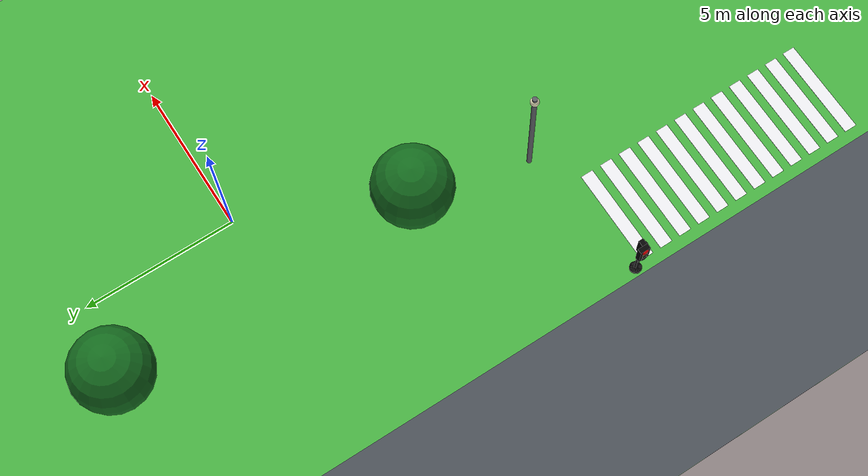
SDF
<sdf version="1.10">
 <world name="city_second">
  <model name="ground_plane">
   <static>true</static>
   <link name="link">
    <collision name="collision">
     <geometry><plane><normal>0 0 1</normal><size>300 300</size></plane></geometry>
    </collision>
    <visual name="visual">
     <geometry><plane><normal>0 0 1</normal><size>300 300</size></plane></geometry>
     <material>
      <ambient>0.280000001 0.689999998 0.25999999 1</ambient>
      <diffuse>0.280000001 0.689999998 0.25999999 1</diffuse>
      <specular>0.0299999993 0.0299999993 0.0299999993 1</specular>
     </material>
    </visual>
    <inertial>
     <mass>1</mass>
     <inertia><ixx>1</ixx><ixy>0</ixy><ixz>0</ixz><iyy>1</iyy><iyz>0</iyz><izz>1</izz></inertia>
    </inertial>
   </link>
  </model>
  <model name="road_v_2_1">
   <static>true</static>
   <pose>-12.095599999999999 -0.169792 0.01 0 0 0</pose>
   <link name="link">
    <collision name="collision"><geometry><box><size>8 84 0.02</size></box></geometry></collision>
    <visual name="visual">
     <geometry><box><size>8 84 0.02</size></box></geometry>
     <material>
      <ambient>0.289999992 0.310000002 0.340000004 1</ambient>
      <diffuse>0.289999992 0.310000002 0.340000004 1</diffuse>
      <specular>0.0299999993 0.0299999993 0.0299999993 1</specular>
     </material>
    </visual>
    <inertial>
     <mass>1</mass>
     <inertia><ixx>1</ixx><ixy>0</ixy><ixz>0</ixz><iyy>1</iyy><iyz>0</iyz><izz>1</izz></inertia>
    </inertial>
   </link>
  </model>
  <model name="crosswalk_v_2_1_east_5_5">
   <static>true</static>
   <pose>-6.1313199999999997 -13.727400000000001 0.017000000000000001 0 0 0</pose>
   <link name="stripe_1">
    <collision name="collision">
     <geometry><box><size>3.2000000000000002 0.41999999999999998 0.01</size></box></geometry>
    </collision>
    <visual name="visual">
     <geometry><box><size>3.2000000000000002 0.41999999999999998 0.01</size></box></geometry>
     <material>
      <ambient>0.920000017 0.920000017 0.930000007 1</ambient>
      <diffuse>0.920000017 0.920000017 0.930000007 1</diffuse>
      <specular>0.0299999993 0.0299999993 0.0299999993 1</specular>
     </material>
    </visual>
    <pose>0 -3.8500000000000001 0 0 0 0</pose>
    <inertial>
     <mass>1</mass>
     <inertia><ixx>1</ixx><ixy>0</ixy><ixz>0</ixz><iyy>1</iyy><iyz>0</iyz><izz>1</izz></inertia>
    </inertial>
   </link>
   <link name="stripe_2">
    <collision name="collision">
     <geometry><box><size>3.2000000000000002 0.41999999999999998 0.01</size></box></geometry>
    </collision>
    <visual name="visual">
     <geometry><box><size>3.2000000000000002 0.41999999999999998 0.01</size></box></geometry>
     <material>
      <ambient>0.920000017 0.920000017 0.930000007 1</ambient>
      <diffuse>0.920000017 0.920000017 0.930000007 1</diffuse>
      <specular>0.0299999993 0.0299999993 0.0299999993 1</specular>
     </material>
    </visual>
    <pose>0 -3.1499999999999968 0 0 0 0</pose>
    <inertial>
     <mass>1</mass>
     <inertia><ixx>1</ixx><ixy>0</ixy><ixz>0</ixz><iyy>1</iyy><iyz>0</iyz><izz>1</izz></inertia>
    </inertial>
   </link>
   <link name="stripe_3">
    <collision name="collision">
     <geometry><box><size>3.2000000000000002 0.41999999999999998 0.01</size></box></geometry>
    </collision>
    <visual name="visual">
     <geometry><box><size>3.2000000000000002 0.41999999999999998 0.01</size></box></geometry>
     <material>
      <ambient>0.920000017 0.920000017 0.930000007 1</ambient>
      <diffuse>0.920000017 0.920000017 0.930000007 1</diffuse>
      <specular>0.0299999993 0.0299999993 0.0299999993 1</specular>
     </material>
    </visual>
    <pose>0 -2.4499999999999975 0 0 0 0</pose>
    <inertial>
     <mass>1</mass>
     <inertia><ixx>1</ixx><ixy>0</ixy><ixz>0</ixz><iyy>1</iyy><iyz>0</iyz><izz>1</izz></inertia>
    </inertial>
   </link>
   <link name="stripe_4">
    <collision name="collision">
     <geometry><box><size>3.2000000000000002 0.41999999999999998 0.01</size></box></geometry>
    </collision>
    <visual name="visual">
     <geometry><box><size>3.2000000000000002 0.41999999999999998 0.01</size></box></geometry>
     <material>
      <ambient>0.920000017 0.920000017 0.930000007 1</ambient>
      <diffuse>0.920000017 0.920000017 0.930000007 1</diffuse>
      <specular>0.0299999993 0.0299999993 0.0299999993 1</specular>
     </material>
    </visual>
    <pose>0 -1.7499999999999982 0 0 0 0</pose>
    <inertial>
     <mass>1</mass>
     <inertia><ixx>1</ixx><ixy>0</ixy><ixz>0</ixz><iyy>1</iyy><iyz>0</iyz><izz>1</izz></inertia>
    </inertial>
   </link>
   <link name="stripe_5">
    <collision name="collision">
     <geometry><box><size>3.2000000000000002 0.41999999999999998 0.01</size></box></geometry>
    </collision>
    <visual name="visual">
     <geometry><box><size>3.2000000000000002 0.41999999999999998 0.01</size></box></geometry>
     <material>
      <ambient>0.920000017 0.920000017 0.930000007 1</ambient>
      <diffuse>0.920000017 0.920000017 0.930000007 1</diffuse>
      <specular>0.0299999993 0.0299999993 0.0299999993 1</specular>
     </material>
    </visual>
    <pose>0 -1.0499999999999989 0 0 0 0</pose>
    <inertial>
     <mass>1</mass>
     <inertia><ixx>1</ixx><ixy>0</ixy><ixz>0</ixz><iyy>1</iyy><iyz>0</iyz><izz>1</izz></inertia>
    </inertial>
   </link>
   <link name="stripe_6">
    <collision name="collision">
     <geometry><box><size>3.2000000000000002 0.41999999999999998 0.01</size></box></geometry>
    </collision>
    <visual name="visual">
     <geometry><box><size>3.2000000000000002 0.41999999999999998 0.01</size></box></geometry>
     <material>
      <ambient>0.920000017 0.920000017 0.930000007 1</ambient>
      <diffuse>0.920000017 0.920000017 0.930000007 1</diffuse>
      <specular>0.0299999993 0.0299999993 0.0299999993 1</specular>
     </material>
    </visual>
    <pose>0 -0.34999999999999787 0 0 0 0</pose>
    <inertial>
     <mass>1</mass>
     <inertia><ixx>1</ixx><ixy>0</ixy><ixz>0</ixz><iyy>1</iyy><iyz>0</iyz><izz>1</izz></inertia>
    </inertial>
   </link>
   <link name="stripe_7">
    <collision name="collision">
     <geometry><box><size>3.2000000000000002 0.41999999999999998 0.01</size></box></geometry>
    </collision>
    <visual name="visual">
     <geometry><box><size>3.2000000000000002 0.41999999999999998 0.01</size></box></geometry>
     <material>
      <ambient>0.920000017 0.920000017 0.930000007 1</ambient>
      <diffuse>0.920000017 0.920000017 0.930000007 1</diffuse>
      <specular>0.0299999993 0.0299999993 0.0299999993 1</specular>
     </material>
    </visual>
    <pose>0 0.35000000000000142 0 0 0 0</pose>
    <inertial>
     <mass>1</mass>
     <inertia><ixx>1</ixx><ixy>0</ixy><ixz>0</ixz><iyy>1</iyy><iyz>0</iyz><izz>1</izz></inertia>
    </inertial>
   </link>
   <link name="stripe_8">
    <collision name="collision">
     <geometry><box><size>3.2000000000000002 0.41999999999999998 0.01</size></box></geometry>
    </collision>
    <visual name="visual">
     <geometry><box><size>3.2000000000000002 0.41999999999999998 0.01</size></box></geometry>
     <material>
      <ambient>0.920000017 0.920000017 0.930000007 1</ambient>
      <diffuse>0.920000017 0.920000017 0.930000007 1</diffuse>
      <specular>0.0299999993 0.0299999993 0.0299999993 1</specular>
     </material>
    </visual>
    <pose>0 1.0500000000000025 0 0 0 0</pose>
    <inertial>
     <mass>1</mass>
     <inertia><ixx>1</ixx><ixy>0</ixy><ixz>0</ixz><iyy>1</iyy><iyz>0</iyz><izz>1</izz></inertia>
    </inertial>
   </link>
   <link name="stripe_9">
    <collision name="collision">
     <geometry><box><size>3.2000000000000002 0.41999999999999998 0.01</size></box></geometry>
    </collision>
    <visual name="visual">
     <geometry><box><size>3.2000000000000002 0.41999999999999998 0.01</size></box></geometry>
     <material>
      <ambient>0.920000017 0.920000017 0.930000007 1</ambient>
      <diffuse>0.920000017 0.920000017 0.930000007 1</diffuse>
      <specular>0.0299999993 0.0299999993 0.0299999993 1</specular>
     </material>
    </visual>
    <pose>0 1.7500000000000018 0 0 0 0</pose>
    <inertial>
     <mass>1</mass>
     <inertia><ixx>1</ixx><ixy>0</ixy><ixz>0</ixz><iyy>1</iyy><iyz>0</iyz><izz>1</izz></inertia>
    </inertial>
   </link>
   <link name="stripe_10">
    <collision name="collision">
     <geometry><box><size>3.2000000000000002 0.41999999999999998 0.01</size></box></geometry>
    </collision>
    <visual name="visual">
     <geometry><box><size>3.2000000000000002 0.41999999999999998 0.01</size></box></geometry>
     <material>
      <ambient>0.920000017 0.920000017 0.930000007 1</ambient>
      <diffuse>0.920000017 0.920000017 0.930000007 1</diffuse>
      <specular>0.0299999993 0.0299999993 0.0299999993 1</specular>
     </material>
    </visual>
    <pose>0 2.4500000000000011 0 0 0 0</pose>
    <inertial>
     <mass>1</mass>
     <inertia><ixx>1</ixx><ixy>0</ixy><ixz>0</ixz><iyy>1</iyy><iyz>0</iyz><izz>1</izz></inertia>
    </inertial>
   </link>
   <link name="stripe_11">
    <collision name="collision">
     <geometry><box><size>3.2000000000000002 0.41999999999999998 0.01</size></box></geometry>
    </collision>
    <visual name="visual">
     <geometry><box><size>3.2000000000000002 0.41999999999999998 0.01</size></box></geometry>
     <material>
      <ambient>0.920000017 0.920000017 0.930000007 1</ambient>
      <diffuse>0.920000017 0.920000017 0.930000007 1</diffuse>
      <specular>0.0299999993 0.0299999993 0.0299999993 1</specular>
     </material>
    </visual>
    <pose>0 3.1500000000000021 0 0 0 0</pose>
    <inertial>
     <mass>1</mass>
     <inertia><ixx>1</ixx><ixy>0</ixy><ixz>0</ixz><iyy>1</iyy><iyz>0</iyz><izz>1</izz></inertia>
    </inertial>
   </link>
   <link name="stripe_12">
    <collision name="collision">
     <geometry><box><size>3.2000000000000002 0.41999999999999998 0.01</size></box></geometry>
    </collision>
    <visual name="visual">
     <geometry><box><size>3.2000000000000002 0.41999999999999998 0.01</size></box></geometry>
     <material>
      <ambient>0.920000017 0.920000017 0.930000007 1</ambient>
      <diffuse>0.920000017 0.920000017 0.930000007 1</diffuse>
      <specular>0.0299999993 0.0299999993 0.0299999993 1</specular>
     </material>
    </visual>
    <pose>0 3.8500000000000014 0 0 0 0</pose>
    <inertial>
     <mass>1</mass>
     <inertia><ixx>1</ixx><ixy>0</ixy><ixz>0</ixz><iyy>1</iyy><iyz>0</iyz><izz>1</izz></inertia>
    </inertial>
   </link>
  </model>
  <model name="lamp_1_2_6">
   <static>true</static>
   <pose>-3.2090200000000002 -8.6416400000000007 2.2000000000000002 0 0 0</pose>
   <link name="link">
    <collision name="collision">
     <geometry>
      <cylinder><radius>0.080000000000000002</radius><length>4.4000000000000004</length></cylinder>
     </geometry>
    </collision>
    <visual name="pole">
     <geometry>
      <cylinder><radius>0.080000000000000002</radius><length>4.4000000000000004</length></cylinder>
     </geometry>
     <material>
      <ambient>0.349999994 0.360000014 0.379999995 1</ambient>
      <diffuse>0.349999994 0.360000014 0.379999995 1</diffuse>
      <specular>0.0299999993 0.0299999993 0.0299999993 1</specular>
     </material>
    </visual>
    <visual name="lamp_head">
     <pose>0 0 2 0 0 0</pose>
     <geometry><sphere><radius>0.14000000000000001</radius></sphere></geometry>
     <material>
      <ambient>0.959999979 0.939999998 0.779999971 1</ambient>
      <diffuse>0.959999979 0.939999998 0.779999971 1</diffuse>
      <specular>0.0299999993 0.0299999993 0.0299999993 1</specular>
     </material>
    </visual>
    <inertial>
     <mass>1</mass>
     <inertia><ixx>1</ixx><ixy>0</ixy><ixz>0</ixz><iyy>1</iyy><iyz>0</iyz><izz>1</izz></inertia>
    </inertial>
   </link>
  </model>
  <model name="Oak tree">
   <static>true</static>
   <pose>-3.0260199999999999 5.1699000000000002 0 0 0 0</pose>
   <link name="link">
    <collision name="footprint">
     <pose>0 0 0.050000000000000003 0 0 0</pose>
     <geometry>
      <cylinder><radius>0.90000000000000002</radius><length>0.10000000000000001</length></cylinder>
     </geometry>
    </collision>
    <visual name="trunk">
     <pose>0 0 1.1000000000000001 0 0 0</pose>
     <geometry>
      <cylinder><radius>0.17999999999999999</radius><length>2.2000000000000002</length></cylinder>
     </geometry>
     <material>
      <ambient>0.379999995 0.219999999 0.109999999 1</ambient>
      <diffuse>0.379999995 0.219999999 0.109999999 1</diffuse>
      <specular>0.119999997 0.119999997 0.119999997 1</specular>
      <emissive>0 0 0 1</emissive>
     </material>
    </visual>
    <visual name="crown">
     <pose>0 0 2.6499999999999999 0 0 0</pose>
     <geometry><sphere><radius>1.25</radius></sphere></geometry>
     <material>
      <ambient>0.0799999982 0.419999987 0.119999997 1</ambient>
      <diffuse>0.0799999982 0.419999987 0.119999997 1</diffuse>
      <specular>0.119999997 0.119999997 0.119999997 1</specular>
      <emissive>0 0 0 1</emissive>
     </material>
    </visual>
    <inertial>
     <mass>1</mass>
     <inertia><ixx>1</ixx><ixy>0</ixy><ixz>0</ixz><iyy>1</iyy><iyz>0</iyz><izz>1</izz></inertia>
    </inertial>
   </link>
  </model>
  <model name="Oak tree_4">
   <static>true</static>
   <pose>-2.92401 -4.6859599999999997 0 0 0 0</pose>
   <link name="link">
    <collision name="footprint">
     <pose>0 0 0.050000000000000003 0 0 0</pose>
     <geometry>
      <cylinder><radius>0.90000000000000002</radius><length>0.10000000000000001</length></cylinder>
     </geometry>
    </collision>
    <visual name="trunk">
     <pose>0 0 1.1000000000000001 0 0 0</pose>
     <geometry>
      <cylinder><radius>0.17999999999999999</radius><length>2.2000000000000002</length></cylinder>
     </geometry>
     <material>
      <ambient>0.379999995 0.219999999 0.109999999 1</ambient>
      <diffuse>0.379999995 0.219999999 0.109999999 1</diffuse>
      <specular>0.119999997 0.119999997 0.119999997 1</specular>
      <emissive>0 0 0 1</emissive>
     </material>
    </visual>
    <visual name="crown">
     <pose>0 0 2.6499999999999999 0 0 0</pose>
     <geometry><sphere><radius>1.25</radius></sphere></geometry>
     <material>
      <ambient>0.0799999982 0.419999987 0.119999997 1</ambient>
      <diffuse>0.0799999982 0.419999987 0.119999997 1</diffuse>
      <specular>0.119999997 0.119999997 0.119999997 1</specular>
      <emissive>0 0 0 1</emissive>
     </material>
    </visual>
    <inertial>
     <mass>1</mass>
     <inertia><ixx>1</ixx><ixy>0</ixy><ixz>0</ixz><iyy>1</iyy><iyz>0</iyz><izz>1</izz></inertia>
    </inertial>
   </link>
  </model>
  <model name="simple_traffic_light_red_west_1">
   <static>true</static>
   <pose>-7.8423600000000002 -9.3772000000000002 -6.9388939039072284e-18 0 0 1.5708000000000006</pose>
   <link name="base">
    <pose>0 0 0.040000000000000001 0 0 0</pose>
    <collision name="collision">
     <geometry>
      <cylinder><radius>0.17999999999999999</radius><length>0.080000000000000002</length></cylinder>
     </geometry>
    </collision>
    <visual name="visual">
     <geometry>
      <cylinder><radius>0.17999999999999999</radius><length>0.080000000000000002</length></cylinder>
     </geometry>
     <material>
      <ambient>0.0799999982 0.0799999982 0.0799999982 1</ambient>
      <diffuse>0.0799999982 0.0799999982 0.0799999982 1</diffuse>
      <specular>0.150000006 0.150000006 0.150000006 1</specular>
      <emissive>0 0 0 1</emissive>
     </material>
    </visual>
    <inertial>
     <mass>1</mass>
     <inertia><ixx>1</ixx><ixy>0</ixy><ixz>0</ixz><iyy>1</iyy><iyz>0</iyz><izz>1</izz></inertia>
    </inertial>
   </link>
   <link name="pole">
    <pose>1.7763568394002505e-15 0 0.80000000000000004 0 0 0</pose>
    <collision name="collision">
     <geometry>
      <cylinder><radius>0.044999999999999998</radius><length>1.6000000000000001</length></cylinder>
     </geometry>
    </collision>
    <visual name="visual">
     <geometry>
      <cylinder><radius>0.044999999999999998</radius><length>1.6000000000000001</length></cylinder>
     </geometry>
     <material>
      <ambient>0.0799999982 0.0799999982 0.0799999982 1</ambient>
      <diffuse>0.0799999982 0.0799999982 0.0799999982 1</diffuse>
      <specular>0.150000006 0.150000006 0.150000006 1</specular>
      <emissive>0 0 0 1</emissive>
     </material>
    </visual>
    <inertial>
     <mass>1</mass>
     <inertia><ixx>1</ixx><ixy>0</ixy><ixz>0</ixz><iyy>1</iyy><iyz>0</iyz><izz>1</izz></inertia>
    </inertial>
   </link>
   <link name="signal_box">
    <pose>-5.3290705182007514e-15 0.090000000000001634 1.5500000000000003 0 0 0</pose>
    <collision name="collision">
     <geometry><box><size>0.34000000000000002 0.16 0.71999999999999997</size></box></geometry>
    </collision>
    <visual name="visual">
     <geometry><box><size>0.34000000000000002 0.16 0.71999999999999997</size></box></geometry>
     <material>
      <ambient>0.0199999996 0.0199999996 0.0199999996 1</ambient>
      <diffuse>0.0199999996 0.0199999996 0.0199999996 1</diffuse>
      <specular>0.150000006 0.150000006 0.150000006 1</specular>
      <emissive>0 0 0 1</emissive>
     </material>
    </visual>
    <inertial>
     <mass>1</mass>
     <inertia><ixx>1</ixx><ixy>0</ixy><ixz>0</ixz><iyy>1</iyy><iyz>0</iyz><izz>1</izz></inertia>
    </inertial>
   </link>
   <link name="red_lens">
    <pose>3.5527136788005009e-15 0.18100000000000449 1.7800000000000002 1.5707963267999996 3.6054887673126345e-27 -1.4130832128153975e-15</pose>
    <collision name="collision">
     <geometry><cylinder><radius>0.105</radius><length>0.035000000000000003</length></cylinder></geometry>
    </collision>
    <visual name="visual">
     <geometry><cylinder><radius>0.105</radius><length>0.035000000000000003</length></cylinder></geometry>
     <material>
      <ambient>1 0.0199999996 0.0199999996 1</ambient>
      <diffuse>1 0.0199999996 0.0199999996 1</diffuse>
      <specular>0.150000006 0.150000006 0.150000006 1</specular>
      <emissive>1 0.0199999996 0.0199999996 1</emissive>
     </material>
    </visual>
    <inertial>
     <mass>1</mass>
     <inertia><ixx>1</ixx><ixy>0</ixy><ixz>0</ixz><iyy>1</iyy><iyz>0</iyz><izz>1</izz></inertia>
    </inertial>
   </link>
   <link name="yellow_lens">
    <pose>-5.3290705182007514e-15 0.18200000000000216 1.5500000000000003 1.5707963267999996 3.6054887673126345e-27 -1.4130832128153975e-15</pose>
    <collision name="collision">
     <geometry>
      <cylinder><radius>0.095000000000000001</radius><length>0.035000000000000003</length></cylinder>
     </geometry>
    </collision>
    <visual name="visual">
     <geometry>
      <cylinder><radius>0.095000000000000001</radius><length>0.035000000000000003</length></cylinder>
     </geometry>
     <material>
      <ambient>0.119999997 0.100000001 0.0199999996 1</ambient>
      <diffuse>0.119999997 0.100000001 0.0199999996 1</diffuse>
      <specular>0.150000006 0.150000006 0.150000006 1</specular>
      <emissive>0 0 0 1</emissive>
     </material>
    </visual>
    <inertial>
     <mass>1</mass>
     <inertia><ixx>1</ixx><ixy>0</ixy><ixz>0</ixz><iyy>1</iyy><iyz>0</iyz><izz>1</izz></inertia>
    </inertial>
   </link>
   <link name="green_lens">
    <pose>3.5527136788005009e-15 0.18300000000000693 1.3199999999999998 1.5707963267999996 3.6054887673126345e-27 -1.4130832128153975e-15</pose>
    <collision name="collision">
     <geometry><cylinder><radius>0.105</radius><length>0.035000000000000003</length></cylinder></geometry>
    </collision>
    <visual name="visual">
     <geometry><cylinder><radius>0.105</radius><length>0.035000000000000003</length></cylinder></geometry>
     <material>
      <ambient>0.0799999982 0.0799999982 0.0799999982 1</ambient>
      <diffuse>0.0799999982 0.0799999982 0.0799999982 1</diffuse>
      <specular>0.150000006 0.150000006 0.150000006 1</specular>
      <emissive>0 0 0 1</emissive>
     </material>
    </visual>
    <inertial>
     <mass>1</mass>
     <inertia><ixx>1</ixx><ixy>0</ixy><ixz>0</ixz><iyy>1</iyy><iyz>0</iyz><izz>1</izz></inertia>
    </inertial>
   </link>
  </model>
  <model name="simple_traffic_light_green_south_1_1">
   <static>true</static>
   <pose>-7.8270611436073505 -9.3625744818050709 0 0 0 -3.1415900000000754</pose>
   <link name="base">
    <pose>0 0 0.040000000000000001 0 0 0</pose>
    <collision name="collision">
     <geometry>
      <cylinder><radius>0.17999999999999999</radius><length>0.080000000000000002</length></cylinder>
     </geometry>
    </collision>
    <visual name="visual">
     <geometry>
      <cylinder><radius>0.17999999999999999</radius><length>0.080000000000000002</length></cylinder>
     </geometry>
     <material>
      <ambient>0.0799999982 0.0799999982 0.0799999982 1</ambient>
      <diffuse>0.0799999982 0.0799999982 0.0799999982 1</diffuse>
      <specular>0.150000006 0.150000006 0.150000006 1</specular>
      <emissive>0 0 0 1</emissive>
     </material>
    </visual>
    <inertial>
     <mass>1</mass>
     <inertia><ixx>1</ixx><ixy>0</ixy><ixz>0</ixz><iyy>1</iyy><iyz>0</iyz><izz>1</izz></inertia>
    </inertial>
   </link>
   <link name="pole">
    <pose>0 -1.7763568394002505e-15 0.80000000000000016 0 0 0</pose>
    <collision name="collision">
     <geometry>
      <cylinder><radius>0.044999999999999998</radius><length>1.6000000000000001</length></cylinder>
     </geometry>
    </collision>
    <visual name="visual">
     <geometry>
      <cylinder><radius>0.044999999999999998</radius><length>1.6000000000000001</length></cylinder>
     </geometry>
     <material>
      <ambient>0.0799999982 0.0799999982 0.0799999982 1</ambient>
      <diffuse>0.0799999982 0.0799999982 0.0799999982 1</diffuse>
      <specular>0.150000006 0.150000006 0.150000006 1</specular>
      <emissive>0 0 0 1</emissive>
     </material>
    </visual>
    <inertial>
     <mass>1</mass>
     <inertia><ixx>1</ixx><ixy>0</ixy><ixz>0</ixz><iyy>1</iyy><iyz>0</iyz><izz>1</izz></inertia>
    </inertial>
   </link>
   <link name="signal_box">
    <pose>8.8817841970012523e-16 0.089999999999998082 1.5500000000000003 0 0 0</pose>
    <collision name="collision">
     <geometry><box><size>0.34000000000000002 0.16 0.71999999999999997</size></box></geometry>
    </collision>
    <visual name="visual">
     <geometry><box><size>0.34000000000000002 0.16 0.71999999999999997</size></box></geometry>
     <material>
      <ambient>0.0199999996 0.0199999996 0.0199999996 1</ambient>
      <diffuse>0.0199999996 0.0199999996 0.0199999996 1</diffuse>
      <specular>0.150000006 0.150000006 0.150000006 1</specular>
      <emissive>0 0 0 1</emissive>
     </material>
    </visual>
    <inertial>
     <mass>1</mass>
     <inertia><ixx>1</ixx><ixy>0</ixy><ixz>0</ixz><iyy>1</iyy><iyz>0</iyz><izz>1</izz></inertia>
    </inertial>
   </link>
   <link name="red_lens">
    <pose>0 0.18099999999999739 1.78 1.5707963267999998 1.2475048931562623e-16 -1.2475078878636004e-16</pose>
    <collision name="collision">
     <geometry><cylinder><radius>0.105</radius><length>0.035000000000000003</length></cylinder></geometry>
    </collision>
    <visual name="visual">
     <geometry><cylinder><radius>0.105</radius><length>0.035000000000000003</length></cylinder></geometry>
     <material>
      <ambient>0.0799999982 0.0799999982 0.0799999982 1</ambient>
      <diffuse>0.0799999982 0.0799999982 0.0799999982 1</diffuse>
      <specular>0.150000006 0.150000006 0.150000006 1</specular>
      <emissive>0 0 0 1</emissive>
     </material>
    </visual>
    <inertial>
     <mass>1</mass>
     <inertia><ixx>1</ixx><ixy>0</ixy><ixz>0</ixz><iyy>1</iyy><iyz>0</iyz><izz>1</izz></inertia>
    </inertial>
   </link>
   <link name="yellow_lens">
    <pose>0 0.18199999999999861 1.5500000000000003 1.5707963267999998 1.2475048931562623e-16 -1.2475078878636004e-16</pose>
    <collision name="collision">
     <geometry>
      <cylinder><radius>0.095000000000000001</radius><length>0.035000000000000003</length></cylinder>
     </geometry>
    </collision>
    <visual name="visual">
     <geometry>
      <cylinder><radius>0.095000000000000001</radius><length>0.035000000000000003</length></cylinder>
     </geometry>
     <material>
      <ambient>0.119999997 0.100000001 0.0199999996 1</ambient>
      <diffuse>0.119999997 0.100000001 0.0199999996 1</diffuse>
      <specular>0.150000006 0.150000006 0.150000006 1</specular>
      <emissive>0 0 0 1</emissive>
     </material>
    </visual>
    <inertial>
     <mass>1</mass>
     <inertia><ixx>1</ixx><ixy>0</ixy><ixz>0</ixz><iyy>1</iyy><iyz>0</iyz><izz>1</izz></inertia>
    </inertial>
   </link>
   <link name="green_lens">
    <pose>8.8817841970012523e-16 0.18299999999999628 1.3200000000000003 1.5707963267999998 1.2475048931562623e-16 -1.2475078878636004e-16</pose>
    <collision name="collision">
     <geometry><cylinder><radius>0.105</radius><length>0.035000000000000003</length></cylinder></geometry>
    </collision>
    <visual name="visual">
     <geometry><cylinder><radius>0.105</radius><length>0.035000000000000003</length></cylinder></geometry>
     <material>
      <ambient>0.0199999996 1 0.0199999996 1</ambient>
      <diffuse>0.0199999996 1 0.0199999996 1</diffuse>
      <specular>0.150000006 0.150000006 0.150000006 1</specular>
      <emissive>0.0199999996 1 0.0199999996 1</emissive>
     </material>
    </visual>
    <inertial>
     <mass>1</mass>
     <inertia><ixx>1</ixx><ixy>0</ixy><ixz>0</ixz><iyy>1</iyy><iyz>0</iyz><izz>1</izz></inertia>
    </inertial>
   </link>
  </model>
 </world>
</sdf>
